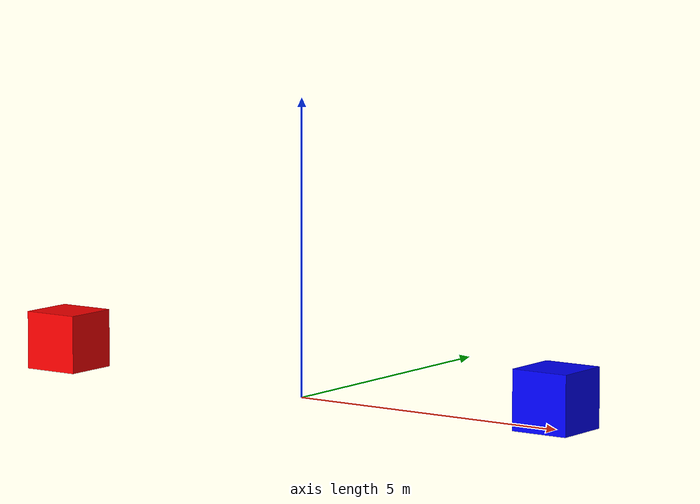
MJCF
<mujoco>
  <option gravity="0 0 -9.81" />
  <worldbody>
    <light diffuse="0.5 0.5 0.5" pos="0 0 5" dir="0 0 -1" />
    <body name="object_3" pos="0 0 -10">
      <geom type="plane" size="50 50 0.1" rgba="0.8 0.8 0.8 1" friction="0.01 0.01 0.01" />
    </body>
    <body name="object_1" pos="-5 0 0.5">
      <geom type="box" size="0.5 0.5 0.5" mass="2" rgba="1 0 0 1" />
      <joint type="free" name="object_1_joint" />
    </body>
    <body name="object_2" pos="5 0 0.5">
      <geom type="box" size="0.5 0.5 0.5" mass="4" rgba="0 0 1 1" />
      <joint type="free" name="object_2_joint" />
    </body>
  </worldbody>
</mujoco>
